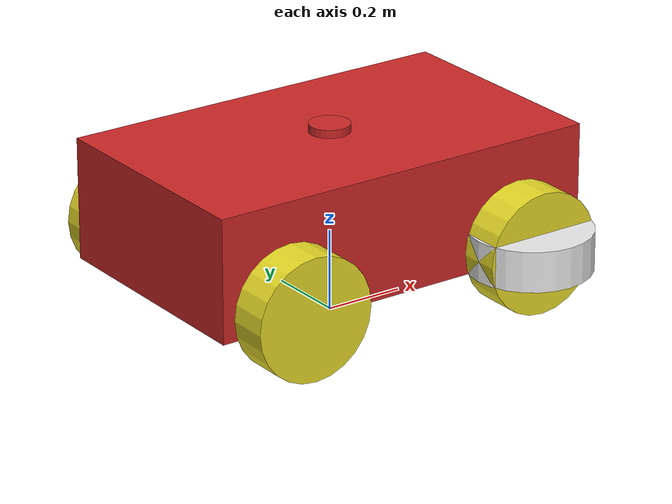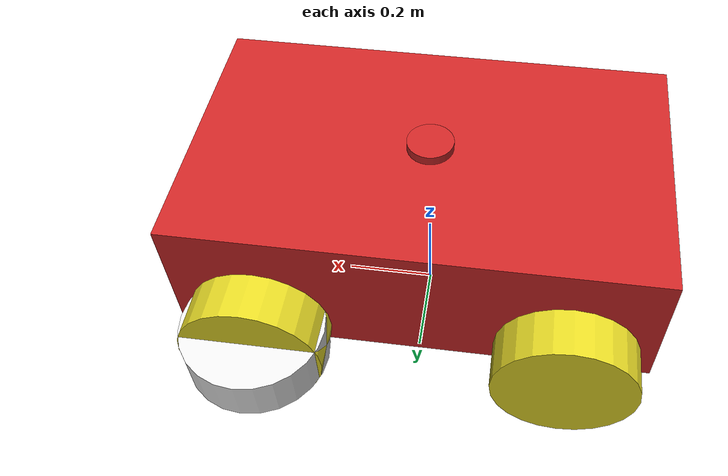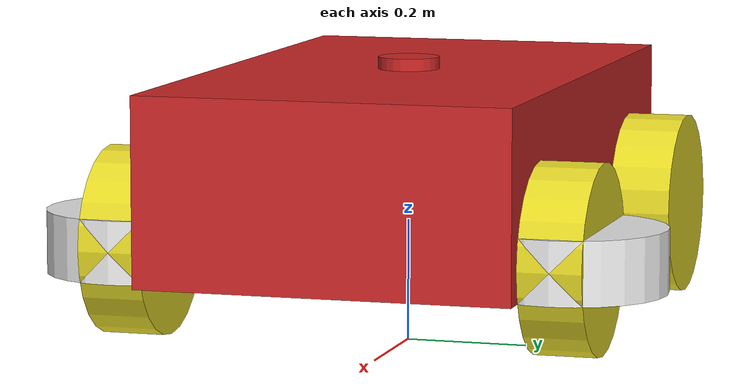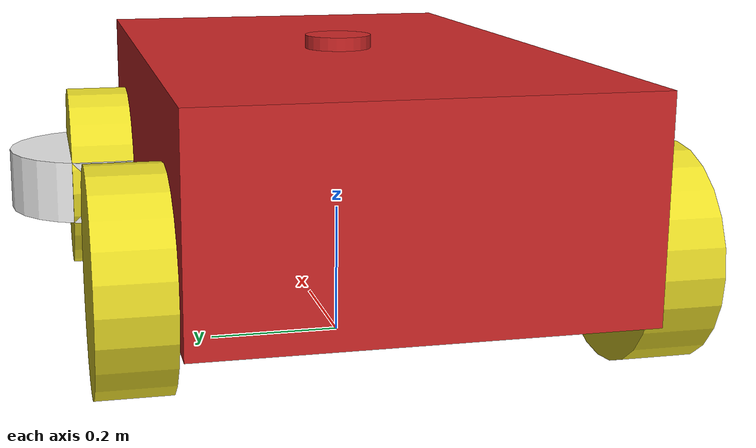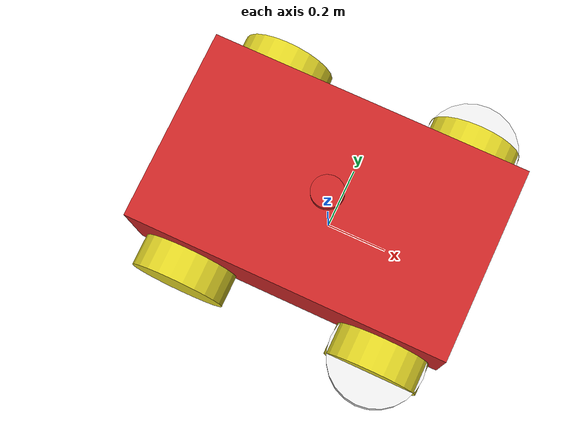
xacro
<?xml version="1.0"?>

<!-- Physical model of a front-steering 4 wheeled robot                                 -->
<!-- Adapted from the 4-wheeled robot of Aleksandar Haber                               -->

<robot name="differential_drive_robot" xmlns:xacro="http://www.ros.org/wiki/xacro">

<!-- Body dimensions -->
<xacro:property name="body_link_x_dim" value="1"/>
<xacro:property name="body_link_y_dim" value="0.6"/>
<xacro:property name="body_link_z_dim" value="0.3"/>

<!-- Wheel dimensions -->
<xacro:property name="wheel_link_radius" value="0.15"/>
<xacro:property name="wheel_link_length" value="0.1"/>
<xacro:property name="wheel_link_location" value="-0.1"/>

<!-- Material density -->
<!-- Aluminium alloy -->
<xacro:property name="body_density" value="10.0"/>
<xacro:property name="wheel_density" value="1000.0"/>

<!-- Pi constant -->
<xacro:property name="pi_const" value="3.14159265"/>

<!-- Robot body and wheel mass -->
<xacro:property name="body_mass" value="${body_density*body_link_x_dim*body_link_y_dim*body_link_z_dim}"/>
<xacro:property name="wheel_mass" value="${wheel_density*pi_const*wheel_link_radius*wheel_link_radius*wheel_link_length}"/>

<!-- Moments of inertia of the wheel -->
<xacro:property name="Iz_wheel" value="${0.5*wheel_mass*wheel_link_radius*wheel_link_radius}"/>
<xacro:property name="I_wheel" value="${(1.0/12.0)*wheel_mass*(3.0*wheel_link_radius*wheel_link_radius+wheel_link_length*wheel_link_length)}"/>

<!-- Wheels inertia section macro -->
<xacro:macro name="inertia_wheel">
        <inertial>
        <origin rpy="0 0 0" xyz="0 0 0"/>
        <mass value="${wheel_mass}"/>
        <inertia ixx="${I_wheel}" ixy="0.0" ixz="0.0" iyy="${I_wheel}" iyz="0.0" izz="${Iz_wheel}" />
        </inertial>
</xacro:macro>

<!-- Gazebo options and motion control driver -->
<xacro:include filename="$(find robot_model_pkg)/urdf/robot.gazebo" />

<!-- Links and joints definition                                -->

<!-- Fixed "dummy" link -->
<link name="dummy">
</link>
<joint name="dummy_joint" type="fixed">
        <parent link="dummy"/>
        <child link="body_link"/>
        <origin xyz="0 0 ${body_link_z_dim}" rpy="0 0 0"/>
</joint>

<!-- Body link of the robot                                     -->

<link name="body_link">
        <visual>
                <geometry>
                        <box size="${body_link_x_dim} ${body_link_y_dim} ${body_link_z_dim}"/>
                </geometry>
        <origin rpy="0 0 0" xyz="0 0 0"/>
        </visual>

        <inertial>
        <origin rpy="0 0 0" xyz="0 0 0"/>
        <mass value="${body_mass}"/>
        <inertia
        ixx="${(1/12)*body_mass*(body_link_y_dim*body_link_y_dim+body_link_z_dim*body_link_z_dim)}"
        ixy="0"
        ixz="0"
        iyy="${(1/12)*body_mass*(body_link_x_dim*body_link_x_dim+body_link_z_dim*body_link_z_dim)}"
        iyz="0"
        izz="${(1/12)*body_mass*(body_link_x_dim*body_link_x_dim+body_link_y_dim*body_link_y_dim)}"
        />
        </inertial>
</link>

<!-- Back right wheel link and joint (wheel1)                   -->

<joint name="wheel1_joint" type="continuous">
        <parent link="body_link"/>
        <child link="wheel1_link"/>
        <origin xyz="${-body_link_x_dim/2+1.2*wheel_link_radius} ${-body_link_y_dim/2-wheel_link_length/2} ${wheel_link_location}" rpy="0 0 0"/>
        <axis xyz="0 1 0"/>
        <limit effort="1000" velocity="1000"/>
        <dynamics damping="1.0" friction="1.0"/>
</joint>

<link name="wheel1_link">
        <visual>
                <geometry>
                        <cylinder length="${wheel_link_length}" radius="${wheel_link_radius}"/>
                </geometry>
        <origin rpy="1.570795 0 0" xyz="0 0 0"/>
        </visual>

        <collision>
                <geometry>
                        <cylinder length="${wheel_link_length}" radius="${wheel_link_radius}"/>
                </geometry>
        <origin rpy="1.570795 0 0" xyz="0 0 0"/>
        </collision>

        <xacro:inertia_wheel />
</link>

  <transmission name="wheel1_velocity">
    <type>transmission_interface/SimpleTransmission</type>
    <joint name="wheel1_joint">
      <hardwareInterface>hardware_interface/VelocityJointInterface</hardwareInterface>
    </joint>
    <actuator name="wheel1_velocity_motor">
      <mechanicalReduction>1</mechanicalReduction>
    </actuator>
  </transmission>

<!-- Back left wheel link and joint (wheel2)                    -->

<link name="wheel2_link">
        <visual>
                <geometry>
                        <cylinder length="${wheel_link_length}" radius="${wheel_link_radius}"/>
                </geometry>
        <origin rpy="1.570795 0 0" xyz="0 0 0"/>
        </visual>

        <collision>
                <geometry>
                        <cylinder length="${wheel_link_length}" radius="${wheel_link_radius}"/>
                </geometry>
        <origin rpy="1.570795 0 0" xyz="0 0 0"/>
        </collision>

        <xacro:inertia_wheel />
</link>

<joint name="wheel2_joint" type="continuous">
        <parent link="body_link"/>
        <child link="wheel2_link"/>
        <origin xyz="${-body_link_x_dim/2+1.2*wheel_link_radius} ${body_link_y_dim/2+wheel_link_length/2} ${wheel_link_location}" rpy="0 0 0"/>
        <axis xyz="0 1 0"/>
        <limit effort="1000" velocity="1000"/>
        <dynamics damping="1.0" friction="1.0"/>
</joint>

  <transmission name="wheel2_velocity">
    <type>transmission_interface/SimpleTransmission</type>
    <joint name="wheel2_joint">
      <hardwareInterface>hardware_interface/VelocityJointInterface</hardwareInterface>
    </joint>
    <actuator name="wheel2_velocity_motor">
      <mechanicalReduction>1</mechanicalReduction>
    </actuator>
  </transmission>

<!-- Front right wheel link and joint (wheel3)                  -->

<link name="wheel3_angle_link">
        <visual>
                <geometry>
                        <cylinder length="${wheel_link_length}" radius="${wheel_link_radius}"/>
                </geometry>
        <origin rpy="0 0 1.570795" xyz="0 0 0"/>
        </visual>

        <xacro:inertia_wheel />

</link>

<joint name="wheel3_angle_joint" type="continuous">
        <parent link="body_link"/>
        <child link="wheel3_angle_link"/>
        <origin xyz="${body_link_x_dim/2-1.2*wheel_link_radius} ${-body_link_y_dim/2-wheel_link_length/2} ${wheel_link_location}" rpy="0 0 0"/>
        <axis xyz="0 0 1"/>
        <limit effort="1000" velocity="1000"/>
        <dynamics damping="1.0" friction="1.0"/>
</joint>

    <transmission name="wheel3_angle">
    <type>transmission_interface/SimpleTransmission</type>
    <joint name="wheel3_angle_joint">
      <hardwareInterface>hardware_interface/PositionJointInterface</hardwareInterface>
    </joint>
    <actuator name="wheel3_angle_motor">
      <mechanicalReduction>1</mechanicalReduction>
    </actuator>
  </transmission>

<link name="wheel3_link">
        <visual>
                <geometry>
                        <cylinder length="${wheel_link_length}" radius="${wheel_link_radius}"/>
                </geometry>
        <origin rpy="1.570795 0 0" xyz="0 0 0"/>
        </visual>

        <collision>
                <geometry>
                        <cylinder length="${wheel_link_length}" radius="${wheel_link_radius}"/>
                </geometry>
        <origin rpy="1.570795 0 0" xyz="0 0 0"/>
        </collision>

        <xacro:inertia_wheel />
</link>

<joint name="wheel3_joint" type="continuous">
        <parent link="wheel3_angle_link"/>
        <child link="wheel3_link"/>
        <origin xyz="0 0 0" rpy="0 0 0"/>
        <axis xyz="0 1 0"/>
        <limit effort="1000" velocity="1000"/>
        <dynamics damping="1.0" friction="1.0"/>
</joint>

  <transmission name="wheel3_velocity">
    <type>transmission_interface/SimpleTransmission</type>
    <joint name="wheel3_joint">
      <hardwareInterface>hardware_interface/VelocityJointInterface</hardwareInterface>
    </joint>
    <actuator name="wheel3_velocity_motor">
      <mechanicalReduction>1</mechanicalReduction>
    </actuator>
  </transmission>

<!-- Front left wheel link and joint (wheel4)                   -->

<link name="wheel4_angle_link">
        <visual>
                <geometry>
                        <cylinder length="${wheel_link_length}" radius="${wheel_link_radius}"/>
                </geometry>
        <origin rpy="0 0 1.570795" xyz="0 0 0"/>
        </visual>

        <xacro:inertia_wheel />

</link>

<joint name="wheel4_angle_joint" type="continuous">
        <parent link="body_link"/>
        <child link="wheel4_angle_link"/>
        <origin xyz="${body_link_x_dim/2-1.2*wheel_link_radius} ${body_link_y_dim/2+wheel_link_length/2} ${wheel_link_location}" rpy="0 0 0"/>
        <axis xyz="0 0 1"/>
        <limit effort="1000" velocity="1000"/>
        <dynamics damping="1.0" friction="1.0"/>
</joint>

    <transmission name="wheel4_angle">
    <type>transmission_interface/SimpleTransmission</type>
    <joint name="wheel4_angle_joint">
      <hardwareInterface>hardware_interface/PositionJointInterface</hardwareInterface>
    </joint>
    <actuator name="wheel4_angle_motor">
      <mechanicalReduction>1</mechanicalReduction>
    </actuator>
  </transmission>

<link name="wheel4_link">
        <visual>
                <geometry>
                        <cylinder length="${wheel_link_length}" radius="${wheel_link_radius}"/>
                </geometry>
        <origin rpy="1.570795 0 0" xyz="0 0 0"/>
        </visual>

        <collision>
                <geometry>
                        <cylinder length="${wheel_link_length}" radius="${wheel_link_radius}"/>
                </geometry>
        <origin rpy="1.570795 0 0" xyz="0 0 0"/>
        </collision>

        <xacro:inertia_wheel />
</link>

<joint name="wheel4_joint" type="continuous">
        <parent link="wheel4_angle_link"/>
        <child link="wheel4_link"/>
        <origin xyz="0 0 0" rpy="0 0 0"/>
        <axis xyz="0 1 0"/>
        <limit effort="1000" velocity="1000"/>
        <dynamics damping="1.0" friction="1.0"/>
</joint>

  <transmission name="wheel4_velocity">
    <type>transmission_interface/SimpleTransmission</type>
    <joint name="wheel4_joint">
      <hardwareInterface>hardware_interface/VelocityJointInterface</hardwareInterface>
    </joint>
    <actuator name="wheel4_velocity_motor">
      <mechanicalReduction>1</mechanicalReduction>
    </actuator>
  </transmission>

<!-- 2D LiDaR joint and link                                    -->

    <joint name="laser_joint" type="fixed">
        <parent link="body_link"/>
        <child link="laser_frame"/>
        <origin xyz="0 0 ${0.5*body_link_z_dim}" rpy="0 0 0"/>
    </joint>

    <link name="laser_frame">
        <visual>
            <geometry>
                <cylinder radius="0.05" length="0.04"/>
            </geometry>
        </visual>

        <collision>
            <geometry>
                <cylinder radius="0.05" length="0.04"/>
            </geometry>
        </collision>

        <xacro:inertia_wheel />

    </link>

    <gazebo reference="laser_frame">
        <material>Gazebo/Red</material>

        <sensor name="laser" type="ray">
            <pose> 0 0 0 0 0 0 </pose>
            <visualize>true</visualize>
            <update_rate>10</update_rate>
            <ray>
                <scan>
                    <horizontal>
                        <samples>360</samples>
                        <min_angle>-3.14</min_angle>
                        <max_angle>3.14</max_angle>
                    </horizontal>
                </scan>
                <range>
                    <min>0.5</min>
                    <max>12</max>
                </range>
            </ray>

            <plugin name="laser_controller" filename="libgazebo_ros_ray_sensor.so">
                <ros>
                    <argument>~/out:=scan</argument>
                </ros>
                <output_type>sensor_msgs/LaserScan</output_type>
                <frame_name>laser_frame</frame_name>
            </plugin>
        </sensor>

    </gazebo>

</robot>
